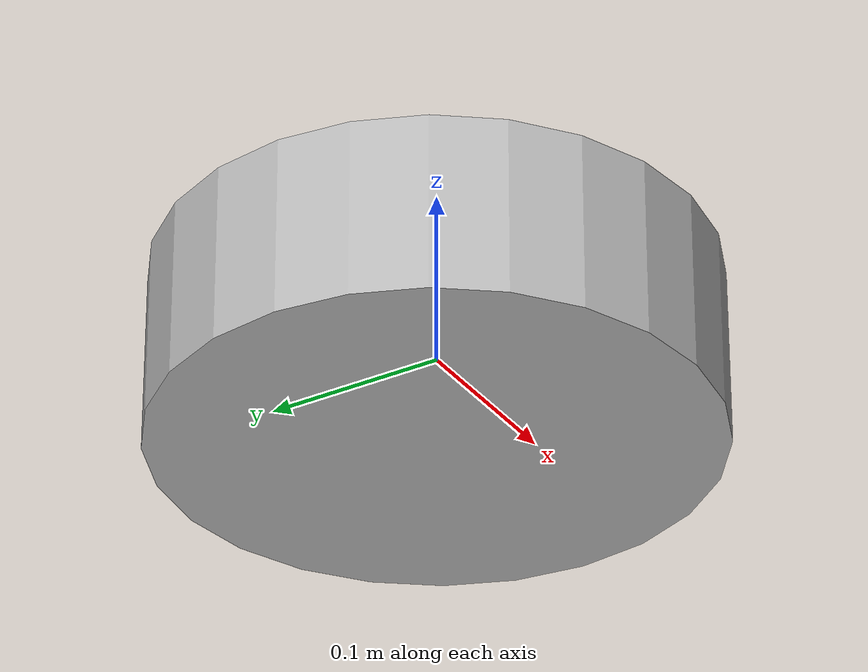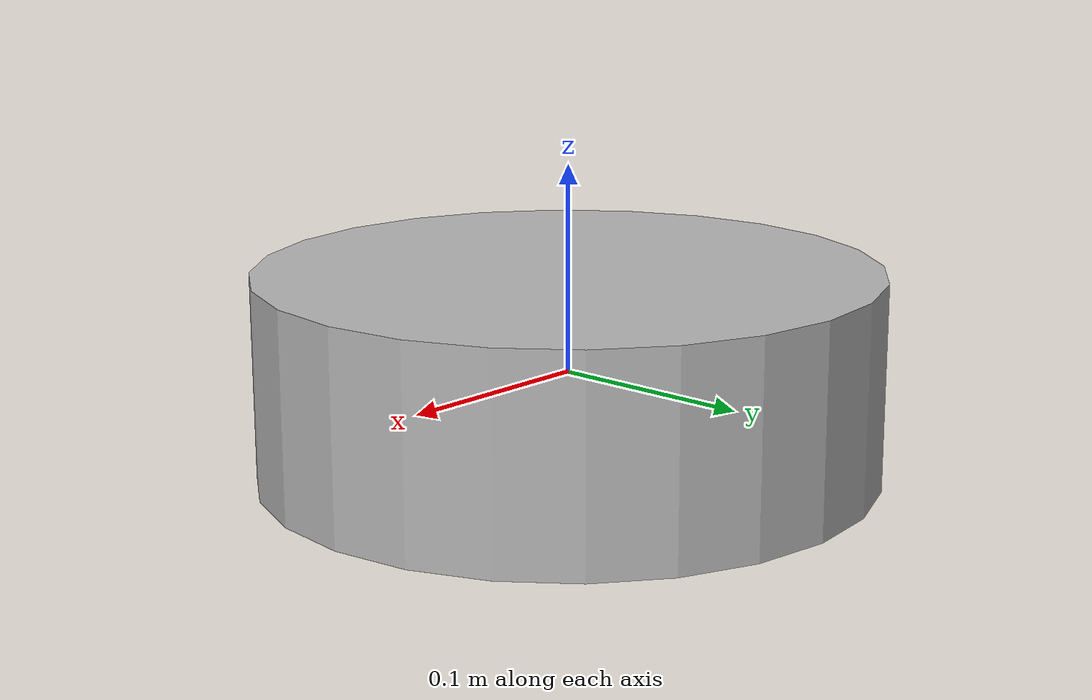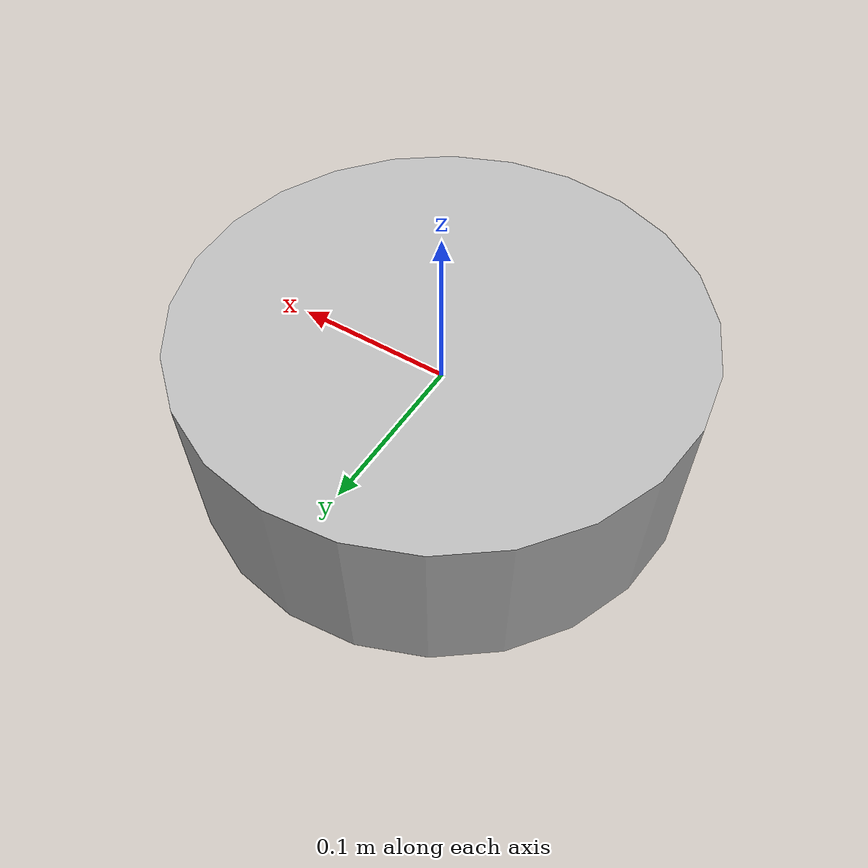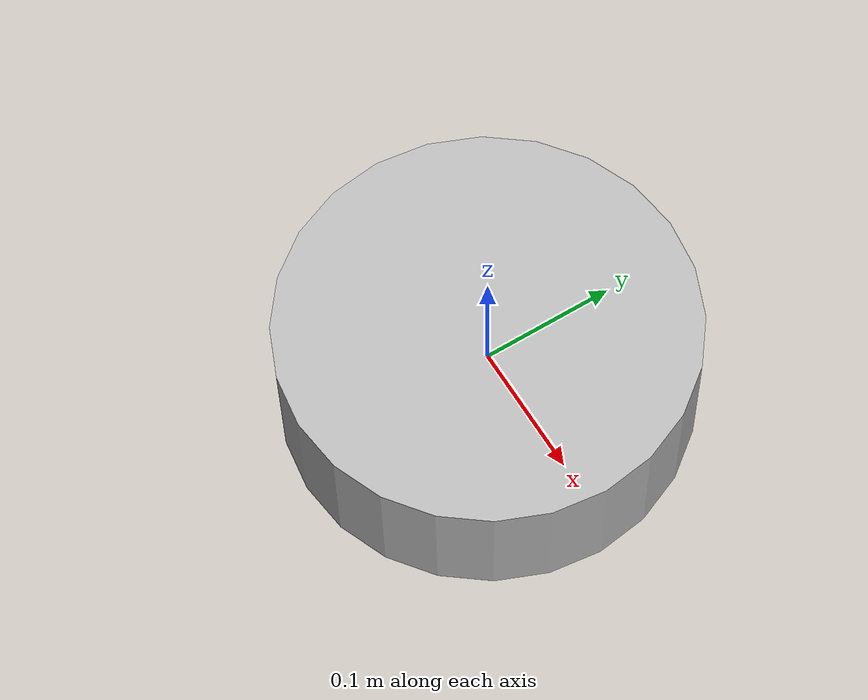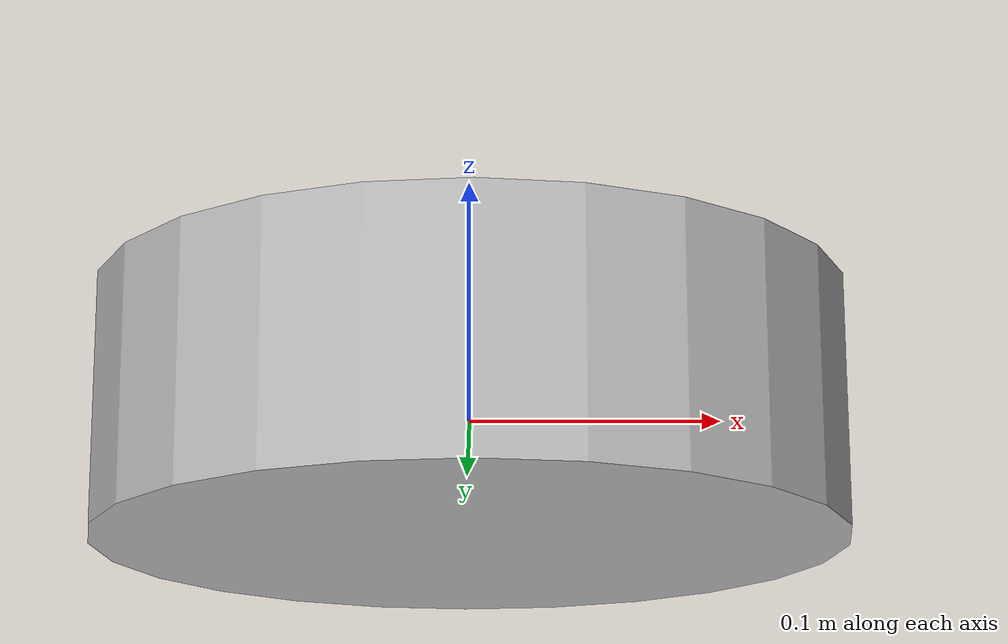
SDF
<?xml version="1.0" ?>
<sdf version="1.5">
  <model name="turtlebot3_waffle">
  <pose>0.0 0.0 0.0 0.0 0.0 0.0</pose>

    <link name="base_footprint"/>

    <link name="base_link">
      <collision name="base_collision">
        <pose>0 0 0 0 0 0</pose>
        <geometry>
          <cylinder>
            <radius>0.15</radius>
            <length>0.1</length>
          </cylinder>
        </geometry>
      </collision>

      <visual name="base_visual">
        <pose>0 0 0 0 0 0</pose>
        <geometry>
          <cylinder>
            <radius>0.15</radius>
            <length>0.1</length>
          </cylinder>
        </geometry>
      </visual>
    </link>

    <link name="base_scan">
      <collision name="lidar_sensor_collision">
        <pose>0 0 0 0 0 0</pose>
        <geometry>
          <cylinder>
            <radius>0.0176</radius>
            <length>0.0344</length>
          </cylinder>
        </geometry>
      </collision>
    </link>

    <link name="base_scan_front">
        <collision name="lidar_sensor_collision_front">
            <pose>0 0 0 0 0 0</pose>
            <geometry>
                <cylinder>
                    <radius>0.0176</radius>
                    <length>0.0344</length>
                </cylinder>
            </geometry>
        </collision>

        <visual name="lidar_sensor_visual_front">
            <pose>0 0 0 0 0 0</pose>
            <geometry>
              <cylinder>
                <radius>0.0176</radius>
                <length>0.0344</length>
              </cylinder>
            </geometry>
        </visual>

        <sensor name="hls_lfcd_lds_front" type="ray">
            <always_on>true</always_on>
            <visualize>flase</visualize>
            <pose>0 0 0 0 0 0</pose>
            <update_rate>5</update_rate>
            <ray>
                <scan>
                    <horizontal>
                        <samples>360</samples>
                        <resolution>1.000000</resolution>
                        <min_angle>0.000000</min_angle>
                        <max_angle>6.280000</max_angle>
                    </horizontal>
                </scan>
                <range>
                    <min>0.120000</min>
                    <max>10.0</max>
                    <resolution>0.015000</resolution>
                </range>
                <noise>
                    <type>gaussian</type>
                    <mean>0.0</mean>
                    <stddev>0.01</stddev>
                </noise>
            </ray>
            <plugin name="turtlebot3_laserscan_front" filename="libgazebo_ros_ray_sensor.so">
                <ros>
                    <remapping>~/out:=scan_front</remapping>
                </ros>
                <output_type>sensor_msgs/LaserScan</output_type>
                <frame_name>base_scan_front</frame_name>
            </plugin>
        </sensor>
    </link>

    <link name="base_scan_back">
        <collision name="lidar_sensor_collision_back">
            <pose>0 0 0 0 0 0</pose>
            <geometry>
                <cylinder>
                    <radius>0.0176</radius>
                    <length>0.0344</length>
                </cylinder>
            </geometry>
        </collision>

        <visual name="lidar_sensor_visual_back">
            <pose>0 0 0 0 0 0</pose>
            <geometry>
              <cylinder>
                <radius>0.0176</radius>
                <length>0.0344</length>
            </cylinder>
            </geometry>
        </visual>

        <sensor name="hls_lfcd_lds_back" type="ray">
            <always_on>true</always_on>
            <visualize>false</visualize>
            <pose>0 0 0 0 0 0</pose>
            <update_rate>5</update_rate>
            <ray>
                <scan>
                    <horizontal>
                        <samples>360</samples>
                        <resolution>1.000000</resolution>
                        <min_angle>0.000000</min_angle>
                        <max_angle>6.280000</max_angle>
                    </horizontal>
                </scan>
                <range>
                    <min>0.120000</min>
                    <max>10.0</max>
                    <resolution>0.015000</resolution>
                </range>
                <noise>
                    <type>gaussian</type>
                    <mean>0.0</mean>
                    <stddev>0.01</stddev>
                </noise>
            </ray>
            <plugin name="turtlebot3_laserscan_back" filename="libgazebo_ros_ray_sensor.so">
                <ros>
                    <remapping>~/out:=scan_back</remapping>
                </ros>
                <output_type>sensor_msgs/LaserScan</output_type>
                <frame_name>base_scan_back</frame_name>
            </plugin>
        </sensor>
    </link>

    <link name="wheel_left_link">
      <collision name="wheel_left_collision">
        <pose>0 0 0 0 0 0</pose>
        <geometry>
          <cylinder>
            <radius>0.05</radius>
            <length>0.03</length>
          </cylinder>
        </geometry>
        <surface>
          <!-- This friction pamareter don't contain reliable data!! -->
          <friction>
            <ode>
              <mu>100000.0</mu>
              <mu2>100000.0</mu2>
              <fdir1>0 0 0</fdir1>
              <slip1>0.0</slip1>
              <slip2>0.0</slip2>
            </ode>
          </friction>
          <contact>
            <ode>
              <soft_cfm>0</soft_cfm>
              <soft_erp>0.2</soft_erp>
              <kp>1e+5</kp>
              <kd>1</kd>
              <max_vel>0.01</max_vel>
              <min_depth>0.001</min_depth>
            </ode>
          </contact>
        </surface>
      </collision>

      <visual name="wheel_left_visual">
        <pose>0 0 0 0 0 0</pose>
        <geometry>
          <cylinder>
            <radius>0.05</radius>
            <length>0.03</length>
          </cylinder>
        </geometry>
      </visual>
    </link>

    <link name="wheel_right_link">
      <collision name="wheel_right_collision">
        <pose>0 0 0 0 0 0</pose>
        <geometry>
          <cylinder>
            <radius>0.05</radius>
            <length>0.03</length>
          </cylinder>
        </geometry>
        <surface>
          <!-- This friction pamareter don't contain reliable data!! -->
          <friction>
            <ode>
              <mu>100000.0</mu>
              <mu2>100000.0</mu2>
              <fdir1>0 0 0</fdir1>
              <slip1>0.0</slip1>
              <slip2>0.0</slip2>
            </ode>
          </friction>
          <contact>
            <ode>
              <soft_cfm>0</soft_cfm>
              <soft_erp>0.2</soft_erp>
              <kp>1e+5</kp>
              <kd>1</kd>
              <max_vel>0.01</max_vel>
              <min_depth>0.001</min_depth>
            </ode>
          </contact>
        </surface>
      </collision>

      <visual name="wheel_right_visual">
        <pose>0 0 0 0 0 0</pose>
        <geometry>
          <cylinder>
            <radius>0.05</radius>
            <length>0.03</length>
          </cylinder>
        </geometry>
      </visual>
    </link>

    <link name='caster_back_link'>
      <pose>0 0 0 0 0 0</pose>
      <collision name='collision'>
        <geometry>
          <box>
            <size>0.03 0.042 0.02</size>
          </box>
        </geometry>
        <surface>
          <contact>
            <ode>
              <soft_cfm>0</soft_cfm>
              <soft_erp>0.2</soft_erp>
              <kp>1e+5</kp>
              <kd>1</kd>
              <max_vel>0.01</max_vel>
              <min_depth>0.001</min_depth>
            </ode>
          </contact>
        </surface>
      </collision>
    </link>

    <link name='ultrasonic_front_link'>
      <collision name="ultrasonic_front_collision">
        <pose>0 0 0 0 0 0</pose>
        <geometry>
          <box>
            <size>0.03 0.06 0.02</size>
          </box>
        </geometry>
      </collision>

      <visual name="ultrasonic_front_visual">
        <pose>0 0 0 0 0 0</pose>
        <geometry>
          <box>
            <size>0.03 0.06 0.02</size>
          </box>
        </geometry>
      </visual>
    </link>

    <link name='ultrasonic_left_link'>
      <collision name="ultrasonic_left_collision">
        <pose>0 0 0 0 0 0</pose>
        <geometry>
          <box>
            <size>0.03 0.06 0.02</size>
          </box>
        </geometry>
      </collision>

      <visual name="ultrasonic_left_visual">
        <pose>0 0 0 0 0 0</pose>
        <geometry>
          <box>
            <size>0.03 0.06 0.02</size>
          </box>
        </geometry>
      </visual>
    </link>

    <link name='ultrasonic_right_link'>
      <collision name="ultrasonic_right_collision">
        <pose>0 0 0 0 0 0</pose>
        <geometry>
          <box>
            <size>0.03 0.06 0.02</size>
          </box>
        </geometry>
      </collision>

      <visual name="ultrasonic_right_visual">
        <pose>0 0 0 0 0 0</pose>
        <geometry>
          <box>
            <size>0.03 0.06 0.02</size>
          </box>
        </geometry>
      </visual>
    </link>

    <joint name="ultrasonic_front_joint" type="fixed">
      <parent>base_link</parent>
      <child>ultrasonic_front_link</child>
      <pose>0.135 0 0.06 0 0 0</pose>
    </joint>

    <joint name="ultrasonic_left_joint" type="fixed">
      <parent>base_link</parent>
      <child>ultrasonic_left_link</child>
      <pose>0.10606 0.10606 0.06 0 0 0.785</pose>
    </joint>

    <joint name="ultrasonic_right_joint" type="fixed">
      <parent>base_link</parent>
      <child>ultrasonic_right_link</child>
      <pose>0.10606 -0.10606 0.06 0 0 -0.785</pose>
    </joint>

    <joint name="base_joint" type="fixed">
      <parent>base_footprint</parent>
      <child>base_link</child>
      <pose>0 0 0.01 0 0 0</pose>
    </joint>

    <joint name="wheel_left_joint" type="revolute">
      <parent>base_link</parent>
      <child>wheel_left_link</child>
      <pose>0.04 0.17 -0.05 -1.57 0 0</pose>
      <axis>
        <xyz>0 0 1</xyz>
      </axis>
    </joint>

    <joint name="wheel_right_joint" type="revolute">
      <parent>base_link</parent>
      <child>wheel_right_link</child>
      <pose>0.04 -0.17 -0.05 -1.57 0 0</pose>
      <axis>
        <xyz>0 0 1</xyz>
      </axis>
    </joint>

    <joint name='caster_back_joint' type='fixed'>
      <parent>base_link</parent>
      <child>caster_back_link</child>
      <pose>-0.135 0 -0.075 -1.57 0 0</pose>
    </joint>

    <joint name="lidar_joint" type="fixed">
      <parent>base_link</parent>
      <child>base_scan</child>
      <pose>0 0 0.06722 0 0 0</pose>
      <axis>
        <xyz>0 0 1</xyz>
      </axis>
    </joint>

    <joint name="lidar_front_joint" type="fixed">
      <parent>base_scan</parent>
      <child>base_scan_front</child>
      <pose> 0.1024 0 0 0 0</pose>
      <axis>
        <xyz>0 0 1</xyz>
      </axis>
    </joint>

    <joint name="lidar_back_joint" type="fixed">
      <parent>base_scan</parent>
      <child>base_scan_back</child>
      <pose>-0.1024 0 0 0 0 3.14</pose>
      <axis>
        <xyz>0 0 1</xyz>
      </axis>
    </joint>

    <plugin name="turtlebot3_diff_drive" filename="libgazebo_ros_diff_drive.so">

      <ros>
      </ros>

      <update_rate>30</update_rate>

      <!-- wheels -->
      <left_joint>wheel_left_joint</left_joint>
      <right_joint>wheel_right_joint</right_joint>

      <!-- kinematics -->
      <wheel_separation>0.287</wheel_separation>
      <wheel_diameter>0.066</wheel_diameter>

      <!-- limits -->
      <max_wheel_torque>20</max_wheel_torque>
      <max_wheel_acceleration>1.0</max_wheel_acceleration>

      <command_topic>cmd_vel</command_topic>

      <!-- output -->
      <publish_odom>true</publish_odom>
      <publish_odom_tf>true</publish_odom_tf>
      <publish_wheel_tf>false</publish_wheel_tf>

      <odometry_topic>odom</odometry_topic>
      <odometry_frame>odom</odometry_frame>
      <robot_base_frame>base_footprint</robot_base_frame>

    </plugin>

    <plugin name="turtlebot3_joint_state" filename="libgazebo_ros_joint_state_publisher.so">
      <ros>
        <remapping>~/out:=joint_states</remapping>
      </ros>
      <update_rate>30</update_rate>
      <joint_name>wheel_left_joint</joint_name>
      <joint_name>wheel_right_joint</joint_name>
    </plugin>

  </model>
</sdf>
